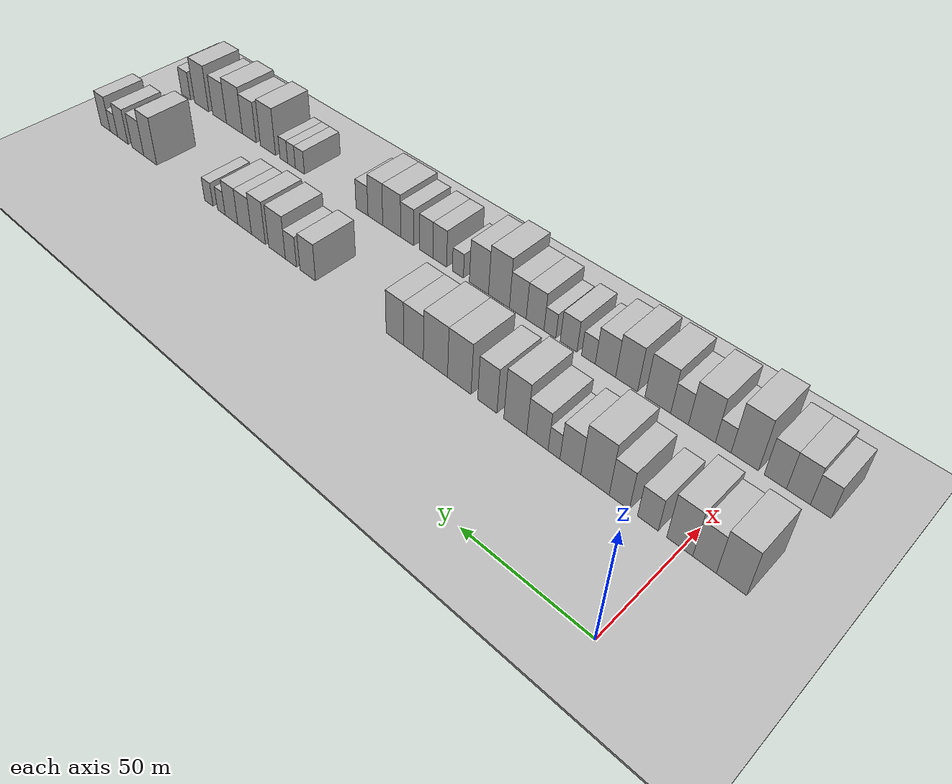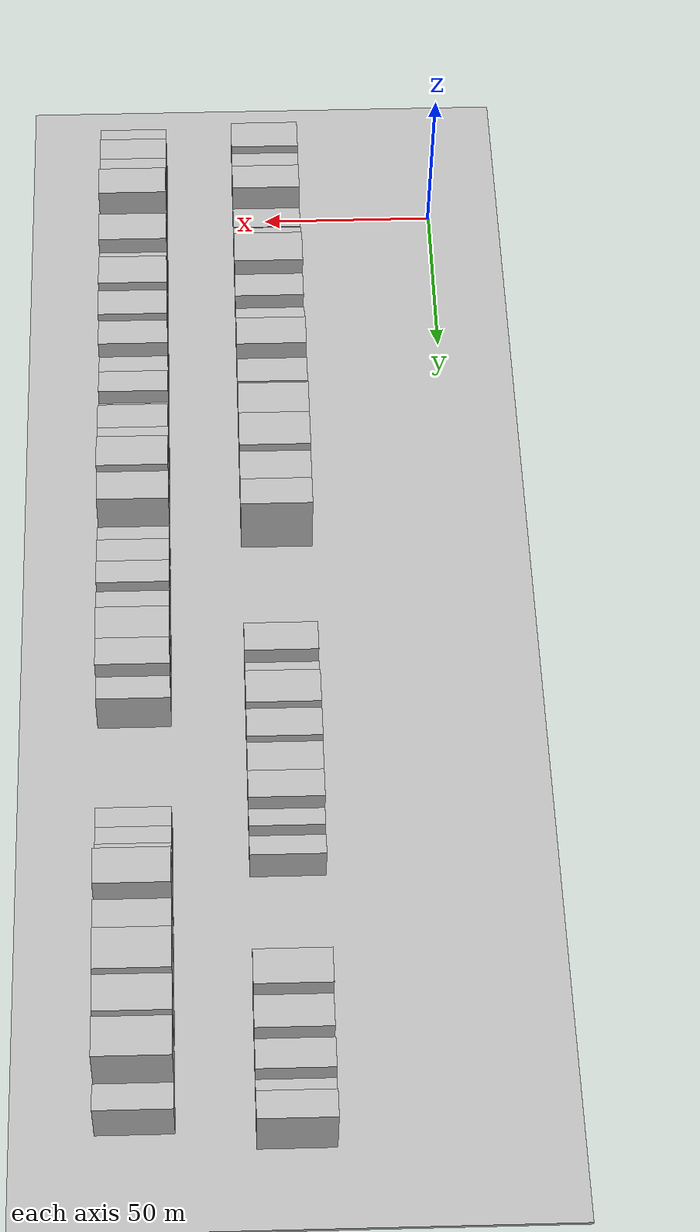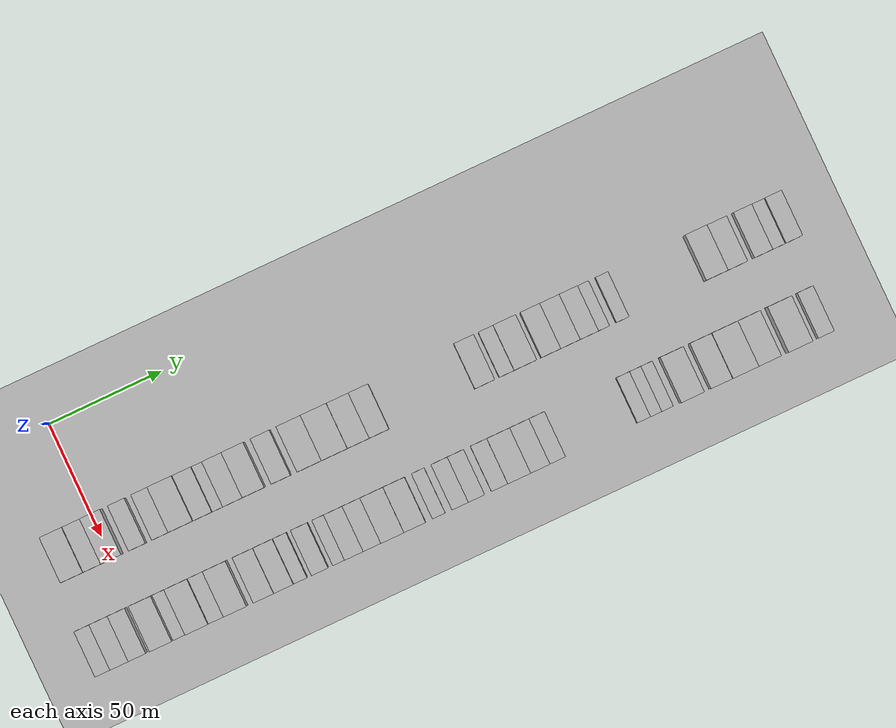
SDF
<sdf version="1.6">
 <world name="default">
  <include><name>ground_plane_1</name><uri>model://HANNAS_ground_plane</uri></include>
  <include>
   <name>ground_plane_2</name>
   <uri>model://HANNAS_ground_plane</uri>
   <pose>100 0 0  0 0 0</pose>
  </include>
  <model name="building_31">
   <static>1</static>
   <pose>50.0000 -16.6911 0 0.000000 0.000000 0.000000</pose>
   <link name="link">
    <pose>0 0 10.50 0 0 0</pose>
    <collision name="collision"><geometry><box><size>20.0000 9.8591 21.0000</size></box></geometry></collision>
    <visual name="visual">
     <cast_shadows>0</cast_shadows>
     <geometry><box><size>20.0000 9.8591 21.0000</size></box></geometry>
     <material>
      <script>
       <uri>model://HANNAS_wall/materials/scripts</uri>
       <uri>model://HANNAS_wall/materials/textures</uri>
       <name>vrc/HANNAS_wall</name>
      </script>
     </material>
    </visual>
   </link>
  </model>
  <model name="building_32">
   <static>1</static>
   <pose>50.0000 -7.8064 0 0.000000 0.000000 0.000000</pose>
   <link name="link">
    <pose>0 0 9.00 0 0 0</pose>
    <collision name="collision"><geometry><box><size>20.0000 7.9102 18.0000</size></box></geometry></collision>
    <visual name="visual">
     <cast_shadows>0</cast_shadows>
     <geometry><box><size>20.0000 7.9102 18.0000</size></box></geometry>
     <material>
      <script>
       <uri>model://HANNAS_wall/materials/scripts</uri>
       <uri>model://HANNAS_wall/materials/textures</uri>
       <name>vrc/HANNAS_wall</name>
      </script>
     </material>
    </visual>
   </link>
  </model>
  <model name="building_33">
   <static>1</static>
   <pose>50.0000 0.6344 0 0.000000 0.000000 0.000000</pose>
   <link name="link">
    <pose>0 0 10.50 0 0 0</pose>
    <collision name="collision"><geometry><box><size>20.0000 8.9715 21.0000</size></box></geometry></collision>
    <visual name="visual">
     <cast_shadows>0</cast_shadows>
     <geometry><box><size>20.0000 8.9715 21.0000</size></box></geometry>
     <material>
      <script>
       <uri>model://HANNAS_wall/materials/scripts</uri>
       <uri>model://HANNAS_wall/materials/textures</uri>
       <name>vrc/HANNAS_wall</name>
      </script>
     </material>
    </visual>
   </link>
  </model>
  <model name="building_34">
   <static>1</static>
   <pose>50.0000 11.8369 0 0.000000 0.000000 0.000000</pose>
   <link name="link">
    <pose>0 0 7.50 0 0 0</pose>
    <collision name="collision"><geometry><box><size>20.0000 7.4334 15.0000</size></box></geometry></collision>
    <visual name="visual">
     <cast_shadows>0</cast_shadows>
     <geometry><box><size>20.0000 7.4334 15.0000</size></box></geometry>
     <material>
      <script>
       <uri>model://HANNAS_wall/materials/scripts</uri>
       <uri>model://HANNAS_wall/materials/textures</uri>
       <name>vrc/HANNAS_wall</name>
      </script>
     </material>
    </visual>
   </link>
  </model>
  <model name="building_35">
   <static>1</static>
   <pose>50.0000 22.2946 0 0.000000 0.000000 0.000000</pose>
   <link name="link">
    <pose>0 0 9.00 0 0 0</pose>
    <collision name="collision"><geometry><box><size>20.0000 7.4822 18.0000</size></box></geometry></collision>
    <visual name="visual">
     <cast_shadows>0</cast_shadows>
     <geometry><box><size>20.0000 7.4822 18.0000</size></box></geometry>
     <material>
      <script>
       <uri>model://HANNAS_wall/materials/scripts</uri>
       <uri>model://HANNAS_wall/materials/textures</uri>
       <name>vrc/HANNAS_wall</name>
      </script>
     </material>
    </visual>
   </link>
  </model>
  <model name="building_36">
   <static>1</static>
   <pose>50.0000 31.4250 0 0.000000 0.000000 0.000000</pose>
   <link name="link">
    <pose>0 0 12.00 0 0 0</pose>
    <collision name="collision"><geometry><box><size>20.0000 10.7786 24.0000</size></box></geometry></collision>
    <visual name="visual">
     <cast_shadows>0</cast_shadows>
     <geometry><box><size>20.0000 10.7786 24.0000</size></box></geometry>
     <material>
      <script>
       <uri>model://HANNAS_wall/materials/scripts</uri>
       <uri>model://HANNAS_wall/materials/textures</uri>
       <name>vrc/HANNAS_wall</name>
      </script>
     </material>
    </visual>
   </link>
  </model>
  <model name="building_37">
   <static>1</static>
   <pose>50.0000 40.9600 0 0.000000 0.000000 0.000000</pose>
   <link name="link">
    <pose>0 0 9.00 0 0 0</pose>
    <collision name="collision"><geometry><box><size>20.0000 8.2913 18.0000</size></box></geometry></collision>
    <visual name="visual">
     <cast_shadows>0</cast_shadows>
     <geometry><box><size>20.0000 8.2913 18.0000</size></box></geometry>
     <material>
      <script>
       <uri>model://HANNAS_wall/materials/scripts</uri>
       <uri>model://HANNAS_wall/materials/textures</uri>
       <name>vrc/HANNAS_wall</name>
      </script>
     </material>
    </visual>
   </link>
  </model>
  <model name="building_38">
   <static>1</static>
   <pose>50.0000 47.5080 0 0.000000 0.000000 0.000000</pose>
   <link name="link">
    <pose>0 0 6.00 0 0 0</pose>
    <collision name="collision"><geometry><box><size>20.0000 4.8046 12.0000</size></box></geometry></collision>
    <visual name="visual">
     <cast_shadows>0</cast_shadows>
     <geometry><box><size>20.0000 4.8046 12.0000</size></box></geometry>
     <material>
      <script>
       <uri>model://HANNAS_wall/materials/scripts</uri>
       <uri>model://HANNAS_wall/materials/textures</uri>
       <name>vrc/HANNAS_wall</name>
      </script>
     </material>
    </visual>
   </link>
  </model>
  <model name="building_39">
   <static>1</static>
   <pose>50.0000 54.3038 0 0.000000 0.000000 0.000000</pose>
   <link name="link">
    <pose>0 0 9.00 0 0 0</pose>
    <collision name="collision"><geometry><box><size>20.0000 8.7870 18.0000</size></box></geometry></collision>
    <visual name="visual">
     <cast_shadows>0</cast_shadows>
     <geometry><box><size>20.0000 8.7870 18.0000</size></box></geometry>
     <material>
      <script>
       <uri>model://HANNAS_wall/materials/scripts</uri>
       <uri>model://HANNAS_wall/materials/textures</uri>
       <name>vrc/HANNAS_wall</name>
      </script>
     </material>
    </visual>
   </link>
  </model>
  <model name="building_40">
   <static>1</static>
   <pose>50.0000 63.5560 0 0.000000 0.000000 0.000000</pose>
   <link name="link">
    <pose>0 0 12.00 0 0 0</pose>
    <collision name="collision"><geometry><box><size>20.0000 9.7173 24.0000</size></box></geometry></collision>
    <visual name="visual">
     <cast_shadows>0</cast_shadows>
     <geometry><box><size>20.0000 9.7173 24.0000</size></box></geometry>
     <material>
      <script>
       <uri>model://HANNAS_wall/materials/scripts</uri>
       <uri>model://HANNAS_wall/materials/textures</uri>
       <name>vrc/HANNAS_wall</name>
      </script>
     </material>
    </visual>
   </link>
  </model>
  <model name="building_41">
   <static>1</static>
   <pose>50.0000 75.6388 0 0.000000 0.000000 0.000000</pose>
   <link name="link">
    <pose>0 0 10.50 0 0 0</pose>
    <collision name="collision"><geometry><box><size>20.0000 8.4484 21.0000</size></box></geometry></collision>
    <visual name="visual">
     <cast_shadows>0</cast_shadows>
     <geometry><box><size>20.0000 8.4484 21.0000</size></box></geometry>
     <material>
      <script>
       <uri>model://HANNAS_wall/materials/scripts</uri>
       <uri>model://HANNAS_wall/materials/textures</uri>
       <name>vrc/HANNAS_wall</name>
      </script>
     </material>
    </visual>
   </link>
  </model>
  <model name="building_42">
   <static>1</static>
   <pose>50.0000 88.2339 0 0.000000 0.000000 0.000000</pose>
   <link name="link">
    <pose>0 0 12.00 0 0 0</pose>
    <collision name="collision"><geometry><box><size>20.0000 10.7418 24.0000</size></box></geometry></collision>
    <visual name="visual">
     <cast_shadows>0</cast_shadows>
     <geometry><box><size>20.0000 10.7418 24.0000</size></box></geometry>
     <material>
      <script>
       <uri>model://HANNAS_wall/materials/scripts</uri>
       <uri>model://HANNAS_wall/materials/textures</uri>
       <name>vrc/HANNAS_wall</name>
      </script>
     </material>
    </visual>
   </link>
  </model>
  <model name="building_43">
   <static>1</static>
   <pose>50.0000 99.3218 0 0.000000 0.000000 0.000000</pose>
   <link name="link">
    <pose>0 0 12.00 0 0 0</pose>
    <collision name="collision"><geometry><box><size>20.0000 11.4338 24.0000</size></box></geometry></collision>
    <visual name="visual">
     <cast_shadows>0</cast_shadows>
     <geometry><box><size>20.0000 11.4338 24.0000</size></box></geometry>
     <material>
      <script>
       <uri>model://HANNAS_wall/materials/scripts</uri>
       <uri>model://HANNAS_wall/materials/textures</uri>
       <name>vrc/HANNAS_wall</name>
      </script>
     </material>
    </visual>
   </link>
  </model>
  <model name="building_44">
   <static>1</static>
   <pose>50.0000 109.8628 0 0.000000 0.000000 0.000000</pose>
   <link name="link">
    <pose>0 0 10.50 0 0 0</pose>
    <collision name="collision"><geometry><box><size>20.0000 9.6482 21.0000</size></box></geometry></collision>
    <visual name="visual">
     <cast_shadows>0</cast_shadows>
     <geometry><box><size>20.0000 9.6482 21.0000</size></box></geometry>
     <material>
      <script>
       <uri>model://HANNAS_wall/materials/scripts</uri>
       <uri>model://HANNAS_wall/materials/textures</uri>
       <name>vrc/HANNAS_wall</name>
      </script>
     </material>
    </visual>
   </link>
  </model>
  <model name="building_45">
   <static>1</static>
   <pose>50.0000 119.0408 0 0.000000 0.000000 0.000000</pose>
   <link name="link">
    <pose>0 0 10.50 0 0 0</pose>
    <collision name="collision"><geometry><box><size>20.0000 8.7080 21.0000</size></box></geometry></collision>
    <visual name="visual">
     <cast_shadows>0</cast_shadows>
     <geometry><box><size>20.0000 8.7080 21.0000</size></box></geometry>
     <material>
      <script>
       <uri>model://HANNAS_wall/materials/scripts</uri>
       <uri>model://HANNAS_wall/materials/textures</uri>
       <name>vrc/HANNAS_wall</name>
      </script>
     </material>
    </visual>
   </link>
  </model>
  <model name="building_46">
   <static>1</static>
   <pose>50.0000 165.6891 0 0.000000 0.000000 0.000000</pose>
   <link name="link">
    <pose>0 0 9.00 0 0 0</pose>
    <collision name="collision"><geometry><box><size>20.0000 8.8628 18.0000</size></box></geometry></collision>
    <visual name="visual">
     <cast_shadows>0</cast_shadows>
     <geometry><box><size>20.0000 8.8628 18.0000</size></box></geometry>
     <material>
      <script>
       <uri>model://HANNAS_wall/materials/scripts</uri>
       <uri>model://HANNAS_wall/materials/textures</uri>
       <name>vrc/HANNAS_wall</name>
      </script>
     </material>
    </visual>
   </link>
  </model>
  <model name="building_47">
   <static>1</static>
   <pose>50.0000 175.3788 0 0.000000 0.000000 0.000000</pose>
   <link name="link">
    <pose>0 0 7.50 0 0 0</pose>
    <collision name="collision"><geometry><box><size>20.0000 6.5166 15.0000</size></box></geometry></collision>
    <visual name="visual">
     <cast_shadows>0</cast_shadows>
     <geometry><box><size>20.0000 6.5166 15.0000</size></box></geometry>
     <material>
      <script>
       <uri>model://HANNAS_wall/materials/scripts</uri>
       <uri>model://HANNAS_wall/materials/textures</uri>
       <name>vrc/HANNAS_wall</name>
      </script>
     </material>
    </visual>
   </link>
  </model>
  <model name="building_48">
   <static>1</static>
   <pose>50.0000 183.6263 0 0.000000 0.000000 0.000000</pose>
   <link name="link">
    <pose>0 0 10.50 0 0 0</pose>
    <collision name="collision"><geometry><box><size>20.0000 9.9783 21.0000</size></box></geometry></collision>
    <visual name="visual">
     <cast_shadows>0</cast_shadows>
     <geometry><box><size>20.0000 9.9783 21.0000</size></box></geometry>
     <material>
      <script>
       <uri>model://HANNAS_wall/materials/scripts</uri>
       <uri>model://HANNAS_wall/materials/textures</uri>
       <name>vrc/HANNAS_wall</name>
      </script>
     </material>
    </visual>
   </link>
  </model>
  <model name="building_49">
   <static>1</static>
   <pose>50.0000 194.9066 0 0.000000 0.000000 0.000000</pose>
   <link name="link">
    <pose>0 0 10.50 0 0 0</pose>
    <collision name="collision"><geometry><box><size>20.0000 8.5822 21.0000</size></box></geometry></collision>
    <visual name="visual">
     <cast_shadows>0</cast_shadows>
     <geometry><box><size>20.0000 8.5822 21.0000</size></box></geometry>
     <material>
      <script>
       <uri>model://HANNAS_wall/materials/scripts</uri>
       <uri>model://HANNAS_wall/materials/textures</uri>
       <name>vrc/HANNAS_wall</name>
      </script>
     </material>
    </visual>
   </link>
  </model>
  <model name="building_50">
   <static>1</static>
   <pose>50.0000 203.5195 0 0.000000 0.000000 0.000000</pose>
   <link name="link">
    <pose>0 0 9.00 0 0 0</pose>
    <collision name="collision"><geometry><box><size>20.0000 8.6437 18.0000</size></box></geometry></collision>
    <visual name="visual">
     <cast_shadows>0</cast_shadows>
     <geometry><box><size>20.0000 8.6437 18.0000</size></box></geometry>
     <material>
      <script>
       <uri>model://HANNAS_wall/materials/scripts</uri>
       <uri>model://HANNAS_wall/materials/textures</uri>
       <name>vrc/HANNAS_wall</name>
      </script>
     </material>
    </visual>
   </link>
  </model>
  <model name="building_51">
   <static>1</static>
   <pose>50.0000 211.8995 0 0.000000 0.000000 0.000000</pose>
   <link name="link">
    <pose>0 0 9.00 0 0 0</pose>
    <collision name="collision"><geometry><box><size>20.0000 8.1161 18.0000</size></box></geometry></collision>
    <visual name="visual">
     <cast_shadows>0</cast_shadows>
     <geometry><box><size>20.0000 8.1161 18.0000</size></box></geometry>
     <material>
      <script>
       <uri>model://HANNAS_wall/materials/scripts</uri>
       <uri>model://HANNAS_wall/materials/textures</uri>
       <name>vrc/HANNAS_wall</name>
      </script>
     </material>
    </visual>
   </link>
  </model>
  <model name="building_52">
   <static>1</static>
   <pose>50.0000 218.4815 0 0.000000 0.000000 0.000000</pose>
   <link name="link">
    <pose>0 0 6.00 0 0 0</pose>
    <collision name="collision"><geometry><box><size>20.0000 5.0480 12.0000</size></box></geometry></collision>
    <visual name="visual">
     <cast_shadows>0</cast_shadows>
     <geometry><box><size>20.0000 5.0480 12.0000</size></box></geometry>
     <material>
      <script>
       <uri>model://HANNAS_wall/materials/scripts</uri>
       <uri>model://HANNAS_wall/materials/textures</uri>
       <name>vrc/HANNAS_wall</name>
      </script>
     </material>
    </visual>
   </link>
  </model>
  <model name="building_53">
   <static>1</static>
   <pose>50.0000 226.8171 0 0.000000 0.000000 0.000000</pose>
   <link name="link">
    <pose>0 0 6.00 0 0 0</pose>
    <collision name="collision"><geometry><box><size>20.0000 5.6231 12.0000</size></box></geometry></collision>
    <visual name="visual">
     <cast_shadows>0</cast_shadows>
     <geometry><box><size>20.0000 5.6231 12.0000</size></box></geometry>
     <material>
      <script>
       <uri>model://HANNAS_wall/materials/scripts</uri>
       <uri>model://HANNAS_wall/materials/textures</uri>
       <name>vrc/HANNAS_wall</name>
      </script>
     </material>
    </visual>
   </link>
  </model>
  <model name="building_54">
   <static>1</static>
   <pose>50.0000 268.0783 0 0.000000 0.000000 0.000000</pose>
   <link name="link">
    <pose>0 0 12.00 0 0 0</pose>
    <collision name="collision"><geometry><box><size>20.0000 9.6331 24.0000</size></box></geometry></collision>
    <visual name="visual">
     <cast_shadows>0</cast_shadows>
     <geometry><box><size>20.0000 9.6331 24.0000</size></box></geometry>
     <material>
      <script>
       <uri>model://HANNAS_wall/materials/scripts</uri>
       <uri>model://HANNAS_wall/materials/textures</uri>
       <name>vrc/HANNAS_wall</name>
      </script>
     </material>
    </visual>
   </link>
  </model>
  <model name="building_55">
   <static>1</static>
   <pose>50.0000 277.3582 0 0.000000 0.000000 0.000000</pose>
   <link name="link">
    <pose>0 0 9.00 0 0 0</pose>
    <collision name="collision"><geometry><box><size>20.0000 8.9267 18.0000</size></box></geometry></collision>
    <visual name="visual">
     <cast_shadows>0</cast_shadows>
     <geometry><box><size>20.0000 8.9267 18.0000</size></box></geometry>
     <material>
      <script>
       <uri>model://HANNAS_wall/materials/scripts</uri>
       <uri>model://HANNAS_wall/materials/textures</uri>
       <name>vrc/HANNAS_wall</name>
      </script>
     </material>
    </visual>
   </link>
  </model>
  <model name="building_56">
   <static>1</static>
   <pose>50.0000 288.8586 0 0.000000 0.000000 0.000000</pose>
   <link name="link">
    <pose>0 0 9.00 0 0 0</pose>
    <collision name="collision"><geometry><box><size>20.0000 8.0740 18.0000</size></box></geometry></collision>
    <visual name="visual">
     <cast_shadows>0</cast_shadows>
     <geometry><box><size>20.0000 8.0740 18.0000</size></box></geometry>
     <material>
      <script>
       <uri>model://HANNAS_wall/materials/scripts</uri>
       <uri>model://HANNAS_wall/materials/textures</uri>
       <name>vrc/HANNAS_wall</name>
      </script>
     </material>
    </visual>
   </link>
  </model>
  <model name="building_57">
   <static>1</static>
   <pose>50.0000 295.7986 0 0.000000 0.000000 0.000000</pose>
   <link name="link">
    <pose>0 0 6.00 0 0 0</pose>
    <collision name="collision"><geometry><box><size>20.0000 5.8061 12.0000</size></box></geometry></collision>
    <visual name="visual">
     <cast_shadows>0</cast_shadows>
     <geometry><box><size>20.0000 5.8061 12.0000</size></box></geometry>
     <material>
      <script>
       <uri>model://HANNAS_wall/materials/scripts</uri>
       <uri>model://HANNAS_wall/materials/textures</uri>
       <name>vrc/HANNAS_wall</name>
      </script>
     </material>
    </visual>
   </link>
  </model>
  <model name="building_58">
   <static>1</static>
   <pose>50.0000 302.4063 0 0.000000 0.000000 0.000000</pose>
   <link name="link">
    <pose>0 0 9.00 0 0 0</pose>
    <collision name="collision"><geometry><box><size>20.0000 7.4092 18.0000</size></box></geometry></collision>
    <visual name="visual">
     <cast_shadows>0</cast_shadows>
     <geometry><box><size>20.0000 7.4092 18.0000</size></box></geometry>
     <material>
      <script>
       <uri>model://HANNAS_wall/materials/scripts</uri>
       <uri>model://HANNAS_wall/materials/textures</uri>
       <name>vrc/HANNAS_wall</name>
      </script>
     </material>
    </visual>
   </link>
  </model>
  <model name="building_91">
   <static>1</static>
   <pose>90.0000 -22.0022 0 0.000000 0.000000 0.000000</pose>
   <link name="link">
    <pose>0 0 7.50 0 0 0</pose>
    <collision name="collision"><geometry><box><size>20.0000 6.8076 15.0000</size></box></geometry></collision>
    <visual name="visual">
     <cast_shadows>0</cast_shadows>
     <geometry><box><size>20.0000 6.8076 15.0000</size></box></geometry>
     <material>
      <script>
       <uri>model://HANNAS_wall/materials/scripts</uri>
       <uri>model://HANNAS_wall/materials/textures</uri>
       <name>vrc/HANNAS_wall</name>
      </script>
     </material>
    </visual>
   </link>
  </model>
  <model name="building_92">
   <static>1</static>
   <pose>90.0000 -14.5587 0 0.000000 0.000000 0.000000</pose>
   <link name="link">
    <pose>0 0 9.00 0 0 0</pose>
    <collision name="collision"><geometry><box><size>20.0000 8.0795 18.0000</size></box></geometry></collision>
    <visual name="visual">
     <cast_shadows>0</cast_shadows>
     <geometry><box><size>20.0000 8.0795 18.0000</size></box></geometry>
     <material>
      <script>
       <uri>model://HANNAS_wall/materials/scripts</uri>
       <uri>model://HANNAS_wall/materials/textures</uri>
       <name>vrc/HANNAS_wall</name>
      </script>
     </material>
    </visual>
   </link>
  </model>
  <model name="building_93">
   <static>1</static>
   <pose>90.0000 -6.6873 0 0.000000 0.000000 0.000000</pose>
   <link name="link">
    <pose>0 0 9.00 0 0 0</pose>
    <collision name="collision"><geometry><box><size>20.0000 7.6632 18.0000</size></box></geometry></collision>
    <visual name="visual">
     <cast_shadows>0</cast_shadows>
     <geometry><box><size>20.0000 7.6632 18.0000</size></box></geometry>
     <material>
      <script>
       <uri>model://HANNAS_wall/materials/scripts</uri>
       <uri>model://HANNAS_wall/materials/textures</uri>
       <name>vrc/HANNAS_wall</name>
      </script>
     </material>
    </visual>
   </link>
  </model>
  <model name="building_94">
   <static>1</static>
   <pose>90.0000 4.0366 0 0.000000 0.000000 0.000000</pose>
   <link name="link">
    <pose>0 0 12.00 0 0 0</pose>
    <collision name="collision"><geometry><box><size>20.0000 9.7846 24.0000</size></box></geometry></collision>
    <visual name="visual">
     <cast_shadows>0</cast_shadows>
     <geometry><box><size>20.0000 9.7846 24.0000</size></box></geometry>
     <material>
      <script>
       <uri>model://HANNAS_wall/materials/scripts</uri>
       <uri>model://HANNAS_wall/materials/textures</uri>
       <name>vrc/HANNAS_wall</name>
      </script>
     </material>
    </visual>
   </link>
  </model>
  <model name="building_95">
   <static>1</static>
   <pose>90.0000 11.7919 0 0.000000 0.000000 0.000000</pose>
   <link name="link">
    <pose>0 0 6.00 0 0 0</pose>
    <collision name="collision"><geometry><box><size>20.0000 5.7261 12.0000</size></box></geometry></collision>
    <visual name="visual">
     <cast_shadows>0</cast_shadows>
     <geometry><box><size>20.0000 5.7261 12.0000</size></box></geometry>
     <material>
      <script>
       <uri>model://HANNAS_wall/materials/scripts</uri>
       <uri>model://HANNAS_wall/materials/textures</uri>
       <name>vrc/HANNAS_wall</name>
      </script>
     </material>
    </visual>
   </link>
  </model>
  <model name="building_96">
   <static>1</static>
   <pose>90.0000 19.7105 0 0.000000 0.000000 0.000000</pose>
   <link name="link">
    <pose>0 0 10.50 0 0 0</pose>
    <collision name="collision"><geometry><box><size>20.0000 10.1111 21.0000</size></box></geometry></collision>
    <visual name="visual">
     <cast_shadows>0</cast_shadows>
     <geometry><box><size>20.0000 10.1111 21.0000</size></box></geometry>
     <material>
      <script>
       <uri>model://HANNAS_wall/materials/scripts</uri>
       <uri>model://HANNAS_wall/materials/textures</uri>
       <name>vrc/HANNAS_wall</name>
      </script>
     </material>
    </visual>
   </link>
  </model>
  <model name="building_97">
   <static>1</static>
   <pose>90.0000 28.1918 0 0.000000 0.000000 0.000000</pose>
   <link name="link">
    <pose>0 0 7.50 0 0 0</pose>
    <collision name="collision"><geometry><box><size>20.0000 6.8514 15.0000</size></box></geometry></collision>
    <visual name="visual">
     <cast_shadows>0</cast_shadows>
     <geometry><box><size>20.0000 6.8514 15.0000</size></box></geometry>
     <material>
      <script>
       <uri>model://HANNAS_wall/materials/scripts</uri>
       <uri>model://HANNAS_wall/materials/textures</uri>
       <name>vrc/HANNAS_wall</name>
      </script>
     </material>
    </visual>
   </link>
  </model>
  <model name="building_98">
   <static>1</static>
   <pose>90.0000 36.6967 0 0.000000 0.000000 0.000000</pose>
   <link name="link">
    <pose>0 0 10.50 0 0 0</pose>
    <collision name="collision"><geometry><box><size>20.0000 10.1584 21.0000</size></box></geometry></collision>
    <visual name="visual">
     <cast_shadows>0</cast_shadows>
     <geometry><box><size>20.0000 10.1584 21.0000</size></box></geometry>
     <material>
      <script>
       <uri>model://HANNAS_wall/materials/scripts</uri>
       <uri>model://HANNAS_wall/materials/textures</uri>
       <name>vrc/HANNAS_wall</name>
      </script>
     </material>
    </visual>
   </link>
  </model>
  <model name="building_99">
   <static>1</static>
   <pose>90.0000 49.2708 0 0.000000 0.000000 0.000000</pose>
   <link name="link">
    <pose>0 0 10.50 0 0 0</pose>
    <collision name="collision"><geometry><box><size>20.0000 8.9898 21.0000</size></box></geometry></collision>
    <visual name="visual">
     <cast_shadows>0</cast_shadows>
     <geometry><box><size>20.0000 8.9898 21.0000</size></box></geometry>
     <material>
      <script>
       <uri>model://HANNAS_wall/materials/scripts</uri>
       <uri>model://HANNAS_wall/materials/textures</uri>
       <name>vrc/HANNAS_wall</name>
      </script>
     </material>
    </visual>
   </link>
  </model>
  <model name="building_100">
   <static>1</static>
   <pose>90.0000 58.0684 0 0.000000 0.000000 0.000000</pose>
   <link name="link">
    <pose>0 0 9.00 0 0 0</pose>
    <collision name="collision"><geometry><box><size>20.0000 8.6053 18.0000</size></box></geometry></collision>
    <visual name="visual">
     <cast_shadows>0</cast_shadows>
     <geometry><box><size>20.0000 8.6053 18.0000</size></box></geometry>
     <material>
      <script>
       <uri>model://HANNAS_wall/materials/scripts</uri>
       <uri>model://HANNAS_wall/materials/textures</uri>
       <name>vrc/HANNAS_wall</name>
      </script>
     </material>
    </visual>
   </link>
  </model>
  <model name="building_101">
   <static>1</static>
   <pose>90.0000 65.3321 0 0.000000 0.000000 0.000000</pose>
   <link name="link">
    <pose>0 0 6.00 0 0 0</pose>
    <collision name="collision"><geometry><box><size>20.0000 5.9221 12.0000</size></box></geometry></collision>
    <visual name="visual">
     <cast_shadows>0</cast_shadows>
     <geometry><box><size>20.0000 5.9221 12.0000</size></box></geometry>
     <material>
      <script>
       <uri>model://HANNAS_wall/materials/scripts</uri>
       <uri>model://HANNAS_wall/materials/textures</uri>
       <name>vrc/HANNAS_wall</name>
      </script>
     </material>
    </visual>
   </link>
  </model>
  <model name="building_102">
   <static>1</static>
   <pose>90.0000 73.9840 0 0.000000 0.000000 0.000000</pose>
   <link name="link">
    <pose>0 0 7.50 0 0 0</pose>
    <collision name="collision"><geometry><box><size>20.0000 7.3816 15.0000</size></box></geometry></collision>
    <visual name="visual">
     <cast_shadows>0</cast_shadows>
     <geometry><box><size>20.0000 7.3816 15.0000</size></box></geometry>
     <material>
      <script>
       <uri>model://HANNAS_wall/materials/scripts</uri>
       <uri>model://HANNAS_wall/materials/textures</uri>
       <name>vrc/HANNAS_wall</name>
      </script>
     </material>
    </visual>
   </link>
  </model>
  <model name="building_103">
   <static>1</static>
   <pose>90.0000 82.3448 0 0.000000 0.000000 0.000000</pose>
   <link name="link">
    <pose>0 0 6.00 0 0 0</pose>
    <collision name="collision"><geometry><box><size>20.0000 5.3401 12.0000</size></box></geometry></collision>
    <visual name="visual">
     <cast_shadows>0</cast_shadows>
     <geometry><box><size>20.0000 5.3401 12.0000</size></box></geometry>
     <material>
      <script>
       <uri>model://HANNAS_wall/materials/scripts</uri>
       <uri>model://HANNAS_wall/materials/textures</uri>
       <name>vrc/HANNAS_wall</name>
      </script>
     </material>
    </visual>
   </link>
  </model>
  <model name="building_104">
   <static>1</static>
   <pose>90.0000 89.1257 0 0.000000 0.000000 0.000000</pose>
   <link name="link">
    <pose>0 0 9.00 0 0 0</pose>
    <collision name="collision"><geometry><box><size>20.0000 8.2217 18.0000</size></box></geometry></collision>
    <visual name="visual">
     <cast_shadows>0</cast_shadows>
     <geometry><box><size>20.0000 8.2217 18.0000</size></box></geometry>
     <material>
      <script>
       <uri>model://HANNAS_wall/materials/scripts</uri>
       <uri>model://HANNAS_wall/materials/textures</uri>
       <name>vrc/HANNAS_wall</name>
      </script>
     </material>
    </visual>
   </link>
  </model>
  <model name="building_105">
   <static>1</static>
   <pose>90.0000 97.1862 0 0.000000 0.000000 0.000000</pose>
   <link name="link">
    <pose>0 0 9.00 0 0 0</pose>
    <collision name="collision"><geometry><box><size>20.0000 7.8993 18.0000</size></box></geometry></collision>
    <visual name="visual">
     <cast_shadows>0</cast_shadows>
     <geometry><box><size>20.0000 7.8993 18.0000</size></box></geometry>
     <material>
      <script>
       <uri>model://HANNAS_wall/materials/scripts</uri>
       <uri>model://HANNAS_wall/materials/textures</uri>
       <name>vrc/HANNAS_wall</name>
      </script>
     </material>
    </visual>
   </link>
  </model>
  <model name="building_106">
   <static>1</static>
   <pose>90.0000 106.2104 0 0.000000 0.000000 0.000000</pose>
   <link name="link">
    <pose>0 0 12.00 0 0 0</pose>
    <collision name="collision"><geometry><box><size>20.0000 10.1489 24.0000</size></box></geometry></collision>
    <visual name="visual">
     <cast_shadows>0</cast_shadows>
     <geometry><box><size>20.0000 10.1489 24.0000</size></box></geometry>
     <material>
      <script>
       <uri>model://HANNAS_wall/materials/scripts</uri>
       <uri>model://HANNAS_wall/materials/textures</uri>
       <name>vrc/HANNAS_wall</name>
      </script>
     </material>
    </visual>
   </link>
  </model>
  <model name="building_107">
   <static>1</static>
   <pose>90.0000 116.0472 0 0.000000 0.000000 0.000000</pose>
   <link name="link">
    <pose>0 0 10.50 0 0 0</pose>
    <collision name="collision"><geometry><box><size>20.0000 9.5248 21.0000</size></box></geometry></collision>
    <visual name="visual">
     <cast_shadows>0</cast_shadows>
     <geometry><box><size>20.0000 9.5248 21.0000</size></box></geometry>
     <material>
      <script>
       <uri>model://HANNAS_wall/materials/scripts</uri>
       <uri>model://HANNAS_wall/materials/textures</uri>
       <name>vrc/HANNAS_wall</name>
      </script>
     </material>
    </visual>
   </link>
  </model>
  <model name="building_108">
   <static>1</static>
   <pose>90.0000 126.6414 0 0.000000 0.000000 0.000000</pose>
   <link name="link">
    <pose>0 0 6.00 0 0 0</pose>
    <collision name="collision"><geometry><box><size>20.0000 5.6637 12.0000</size></box></geometry></collision>
    <visual name="visual">
     <cast_shadows>0</cast_shadows>
     <geometry><box><size>20.0000 5.6637 12.0000</size></box></geometry>
     <material>
      <script>
       <uri>model://HANNAS_wall/materials/scripts</uri>
       <uri>model://HANNAS_wall/materials/textures</uri>
       <name>vrc/HANNAS_wall</name>
      </script>
     </material>
    </visual>
   </link>
  </model>
  <model name="building_109">
   <static>1</static>
   <pose>90.0000 136.0870 0 0.000000 0.000000 0.000000</pose>
   <link name="link">
    <pose>0 0 9.00 0 0 0</pose>
    <collision name="collision"><geometry><box><size>20.0000 7.2275 18.0000</size></box></geometry></collision>
    <visual name="visual">
     <cast_shadows>0</cast_shadows>
     <geometry><box><size>20.0000 7.2275 18.0000</size></box></geometry>
     <material>
      <script>
       <uri>model://HANNAS_wall/materials/scripts</uri>
       <uri>model://HANNAS_wall/materials/textures</uri>
       <name>vrc/HANNAS_wall</name>
      </script>
     </material>
    </visual>
   </link>
  </model>
  <model name="building_110">
   <static>1</static>
   <pose>90.0000 143.3092 0 0.000000 0.000000 0.000000</pose>
   <link name="link">
    <pose>0 0 9.00 0 0 0</pose>
    <collision name="collision"><geometry><box><size>20.0000 7.2169 18.0000</size></box></geometry></collision>
    <visual name="visual">
     <cast_shadows>0</cast_shadows>
     <geometry><box><size>20.0000 7.2169 18.0000</size></box></geometry>
     <material>
      <script>
       <uri>model://HANNAS_wall/materials/scripts</uri>
       <uri>model://HANNAS_wall/materials/textures</uri>
       <name>vrc/HANNAS_wall</name>
      </script>
     </material>
    </visual>
   </link>
  </model>
  <model name="building_111">
   <static>1</static>
   <pose>90.0000 153.5211 0 0.000000 0.000000 0.000000</pose>
   <link name="link">
    <pose>0 0 9.00 0 0 0</pose>
    <collision name="collision"><geometry><box><size>20.0000 7.2070 18.0000</size></box></geometry></collision>
    <visual name="visual">
     <cast_shadows>0</cast_shadows>
     <geometry><box><size>20.0000 7.2070 18.0000</size></box></geometry>
     <material>
      <script>
       <uri>model://HANNAS_wall/materials/scripts</uri>
       <uri>model://HANNAS_wall/materials/textures</uri>
       <name>vrc/HANNAS_wall</name>
      </script>
     </material>
    </visual>
   </link>
  </model>
  <model name="building_112">
   <static>1</static>
   <pose>90.0000 162.1645 0 0.000000 0.000000 0.000000</pose>
   <link name="link">
    <pose>0 0 10.50 0 0 0</pose>
    <collision name="collision"><geometry><box><size>20.0000 10.0798 21.0000</size></box></geometry></collision>
    <visual name="visual">
     <cast_shadows>0</cast_shadows>
     <geometry><box><size>20.0000 10.0798 21.0000</size></box></geometry>
     <material>
      <script>
       <uri>model://HANNAS_wall/materials/scripts</uri>
       <uri>model://HANNAS_wall/materials/textures</uri>
       <name>vrc/HANNAS_wall</name>
      </script>
     </material>
    </visual>
   </link>
  </model>
  <model name="building_113">
   <static>1</static>
   <pose>90.0000 171.4575 0 0.000000 0.000000 0.000000</pose>
   <link name="link">
    <pose>0 0 10.50 0 0 0</pose>
    <collision name="collision"><geometry><box><size>20.0000 8.5062 21.0000</size></box></geometry></collision>
    <visual name="visual">
     <cast_shadows>0</cast_shadows>
     <geometry><box><size>20.0000 8.5062 21.0000</size></box></geometry>
     <material>
      <script>
       <uri>model://HANNAS_wall/materials/scripts</uri>
       <uri>model://HANNAS_wall/materials/textures</uri>
       <name>vrc/HANNAS_wall</name>
      </script>
     </material>
    </visual>
   </link>
  </model>
  <model name="building_114">
   <static>1</static>
   <pose>90.0000 179.2190 0 0.000000 0.000000 0.000000</pose>
   <link name="link">
    <pose>0 0 7.50 0 0 0</pose>
    <collision name="collision"><geometry><box><size>20.0000 7.0169 15.0000</size></box></geometry></collision>
    <visual name="visual">
     <cast_shadows>0</cast_shadows>
     <geometry><box><size>20.0000 7.0169 15.0000</size></box></geometry>
     <material>
      <script>
       <uri>model://HANNAS_wall/materials/scripts</uri>
       <uri>model://HANNAS_wall/materials/textures</uri>
       <name>vrc/HANNAS_wall</name>
      </script>
     </material>
    </visual>
   </link>
  </model>
  <model name="building_115">
   <static>1</static>
   <pose>90.0000 217.4882 0 0.000000 0.000000 0.000000</pose>
   <link name="link">
    <pose>0 0 6.00 0 0 0</pose>
    <collision name="collision"><geometry><box><size>20.0000 5.8405 12.0000</size></box></geometry></collision>
    <visual name="visual">
     <cast_shadows>0</cast_shadows>
     <geometry><box><size>20.0000 5.8405 12.0000</size></box></geometry>
     <material>
      <script>
       <uri>model://HANNAS_wall/materials/scripts</uri>
       <uri>model://HANNAS_wall/materials/textures</uri>
       <name>vrc/HANNAS_wall</name>
      </script>
     </material>
    </visual>
   </link>
  </model>
  <model name="building_116">
   <static>1</static>
   <pose>90.0000 222.9111 0 0.000000 0.000000 0.000000</pose>
   <link name="link">
    <pose>0 0 6.00 0 0 0</pose>
    <collision name="collision"><geometry><box><size>20.0000 5.0051 12.0000</size></box></geometry></collision>
    <visual name="visual">
     <cast_shadows>0</cast_shadows>
     <geometry><box><size>20.0000 5.0051 12.0000</size></box></geometry>
     <material>
      <script>
       <uri>model://HANNAS_wall/materials/scripts</uri>
       <uri>model://HANNAS_wall/materials/textures</uri>
       <name>vrc/HANNAS_wall</name>
      </script>
     </material>
    </visual>
   </link>
  </model>
  <model name="building_117">
   <static>1</static>
   <pose>90.0000 227.9605 0 0.000000 0.000000 0.000000</pose>
   <link name="link">
    <pose>0 0 6.00 0 0 0</pose>
    <collision name="collision"><geometry><box><size>20.0000 5.0938 12.0000</size></box></geometry></collision>
    <visual name="visual">
     <cast_shadows>0</cast_shadows>
     <geometry><box><size>20.0000 5.0938 12.0000</size></box></geometry>
     <material>
      <script>
       <uri>model://HANNAS_wall/materials/scripts</uri>
       <uri>model://HANNAS_wall/materials/textures</uri>
       <name>vrc/HANNAS_wall</name>
      </script>
     </material>
    </visual>
   </link>
  </model>
  <model name="building_118">
   <static>1</static>
   <pose>90.0000 238.6134 0 0.000000 0.000000 0.000000</pose>
   <link name="link">
    <pose>0 0 12.00 0 0 0</pose>
    <collision name="collision"><geometry><box><size>20.0000 10.2121 24.0000</size></box></geometry></collision>
    <visual name="visual">
     <cast_shadows>0</cast_shadows>
     <geometry><box><size>20.0000 10.2121 24.0000</size></box></geometry>
     <material>
      <script>
       <uri>model://HANNAS_wall/materials/scripts</uri>
       <uri>model://HANNAS_wall/materials/textures</uri>
       <name>vrc/HANNAS_wall</name>
      </script>
     </material>
    </visual>
   </link>
  </model>
  <model name="building_119">
   <static>1</static>
   <pose>90.0000 251.5066 0 0.000000 0.000000 0.000000</pose>
   <link name="link">
    <pose>0 0 10.50 0 0 0</pose>
    <collision name="collision"><geometry><box><size>20.0000 9.5742 21.0000</size></box></geometry></collision>
    <visual name="visual">
     <cast_shadows>0</cast_shadows>
     <geometry><box><size>20.0000 9.5742 21.0000</size></box></geometry>
     <material>
      <script>
       <uri>model://HANNAS_wall/materials/scripts</uri>
       <uri>model://HANNAS_wall/materials/textures</uri>
       <name>vrc/HANNAS_wall</name>
      </script>
     </material>
    </visual>
   </link>
  </model>
  <model name="building_120">
   <static>1</static>
   <pose>90.0000 262.0180 0 0.000000 0.000000 0.000000</pose>
   <link name="link">
    <pose>0 0 12.00 0 0 0</pose>
    <collision name="collision"><geometry><box><size>20.0000 11.4486 24.0000</size></box></geometry></collision>
    <visual name="visual">
     <cast_shadows>0</cast_shadows>
     <geometry><box><size>20.0000 11.4486 24.0000</size></box></geometry>
     <material>
      <script>
       <uri>model://HANNAS_wall/materials/scripts</uri>
       <uri>model://HANNAS_wall/materials/textures</uri>
       <name>vrc/HANNAS_wall</name>
      </script>
     </material>
    </visual>
   </link>
  </model>
  <model name="building_121">
   <static>1</static>
   <pose>90.0000 272.7848 0 0.000000 0.000000 0.000000</pose>
   <link name="link">
    <pose>0 0 10.50 0 0 0</pose>
    <collision name="collision"><geometry><box><size>20.0000 10.0850 21.0000</size></box></geometry></collision>
    <visual name="visual">
     <cast_shadows>0</cast_shadows>
     <geometry><box><size>20.0000 10.0850 21.0000</size></box></geometry>
     <material>
      <script>
       <uri>model://HANNAS_wall/materials/scripts</uri>
       <uri>model://HANNAS_wall/materials/textures</uri>
       <name>vrc/HANNAS_wall</name>
      </script>
     </material>
    </visual>
   </link>
  </model>
  <model name="building_122">
   <static>1</static>
   <pose>90.0000 286.1712 0 0.000000 0.000000 0.000000</pose>
   <link name="link">
    <pose>0 0 12.00 0 0 0</pose>
    <collision name="collision"><geometry><box><size>20.0000 10.6878 24.0000</size></box></geometry></collision>
    <visual name="visual">
     <cast_shadows>0</cast_shadows>
     <geometry><box><size>20.0000 10.6878 24.0000</size></box></geometry>
     <material>
      <script>
       <uri>model://HANNAS_wall/materials/scripts</uri>
       <uri>model://HANNAS_wall/materials/textures</uri>
       <name>vrc/HANNAS_wall</name>
      </script>
     </material>
    </visual>
   </link>
  </model>
  <model name="building_123">
   <static>1</static>
   <pose>90.0000 298.0379 0 0.000000 0.000000 0.000000</pose>
   <link name="link">
    <pose>0 0 7.50 0 0 0</pose>
    <collision name="collision"><geometry><box><size>20.0000 7.0457 15.0000</size></box></geometry></collision>
    <visual name="visual">
     <cast_shadows>0</cast_shadows>
     <geometry><box><size>20.0000 7.0457 15.0000</size></box></geometry>
     <material>
      <script>
       <uri>model://HANNAS_wall/materials/scripts</uri>
       <uri>model://HANNAS_wall/materials/textures</uri>
       <name>vrc/HANNAS_wall</name>
      </script>
     </material>
    </visual>
   </link>
  </model>
 </world>
</sdf>
